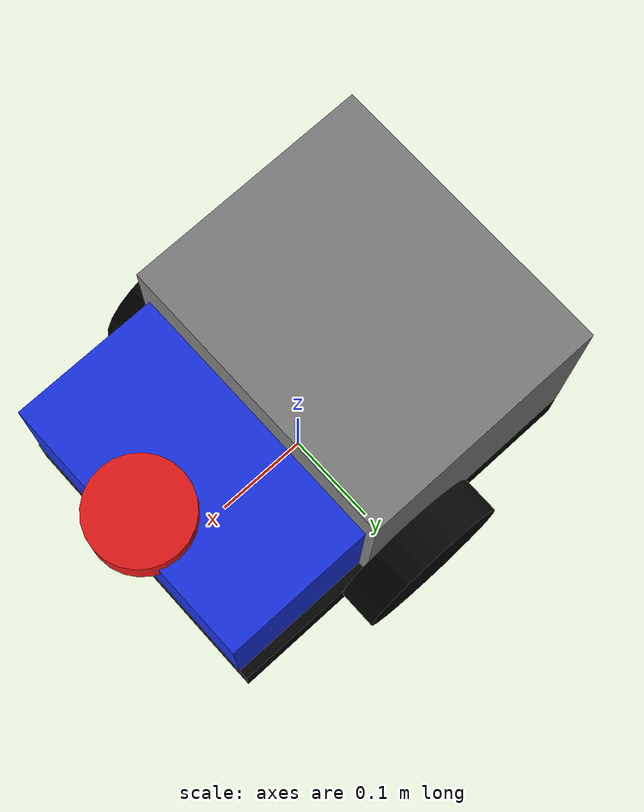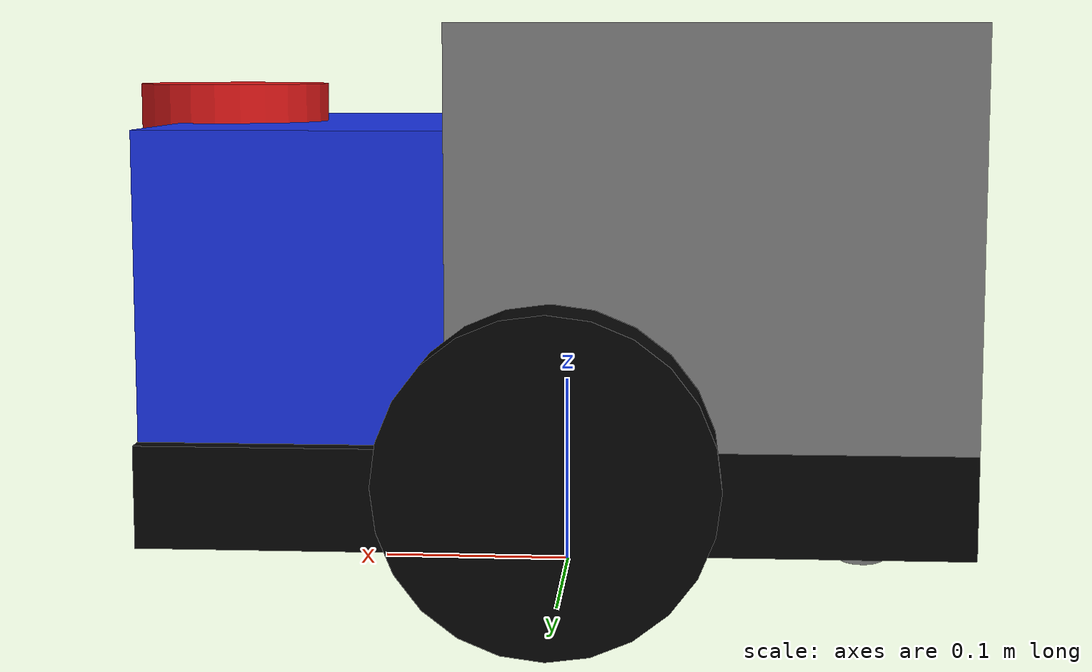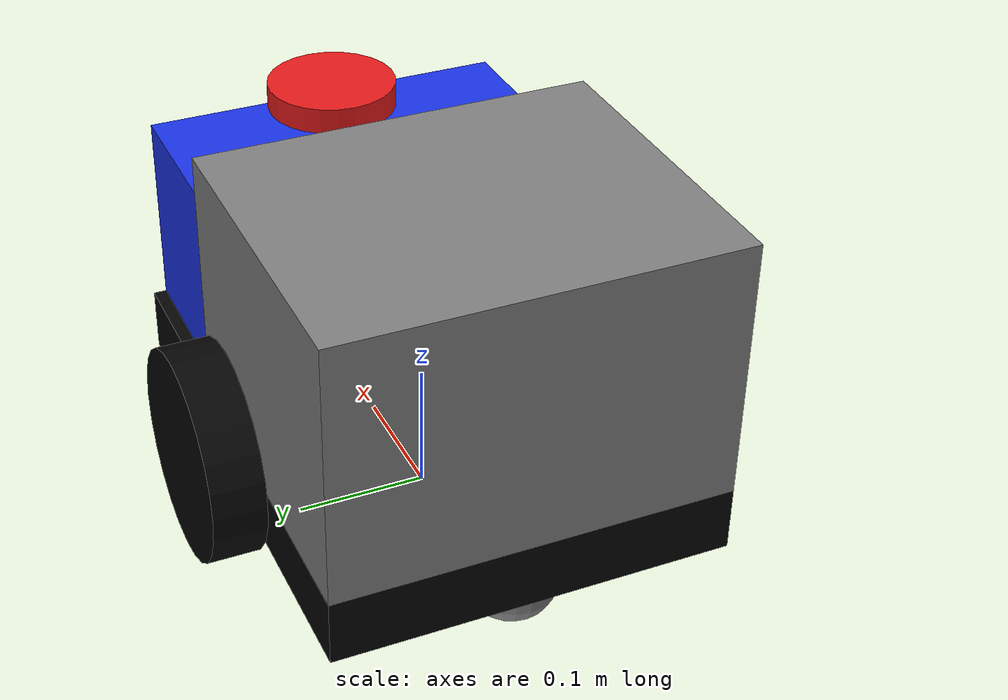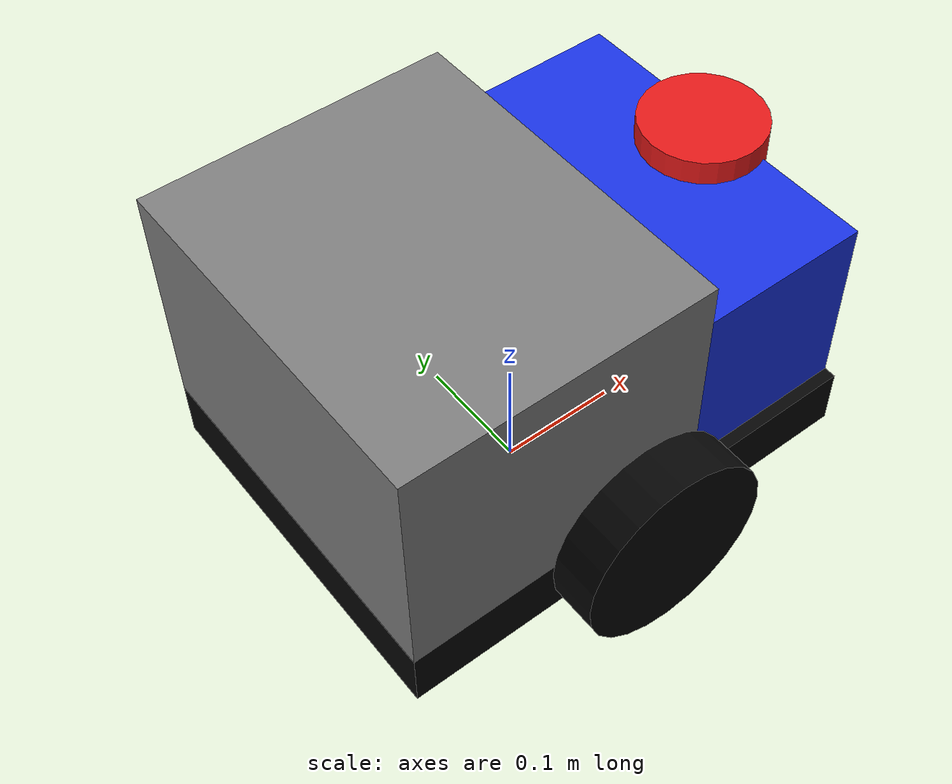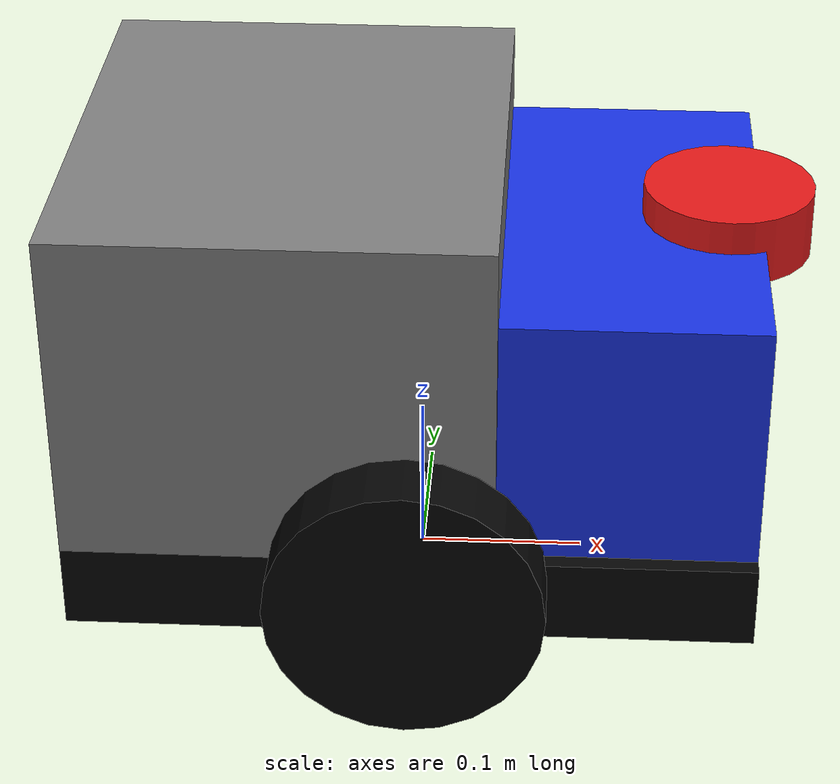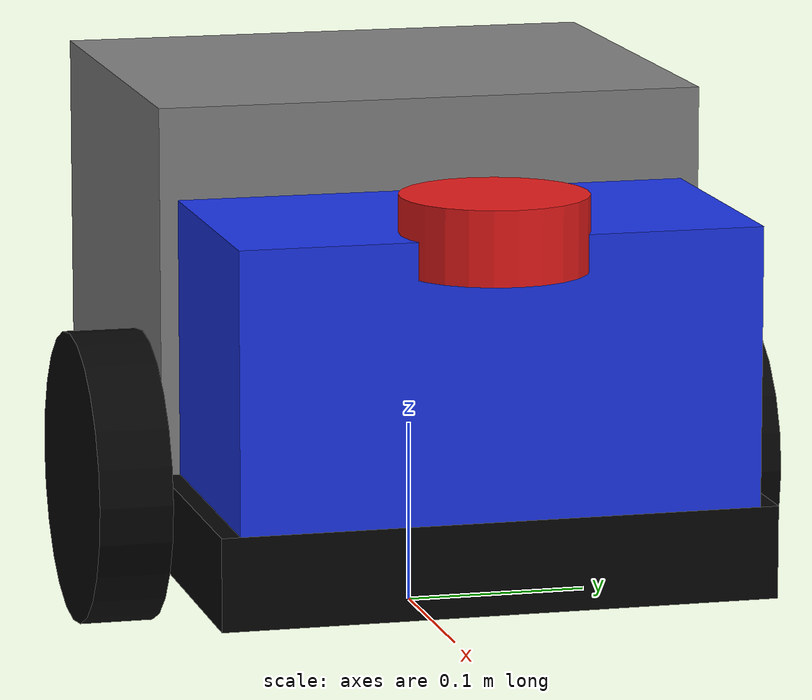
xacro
<?xml version="1.0"?>
<robot name="group34Bot" xmlns:xacro="http://www.ros.org/wiki/xacro">

  <!-- Include other files -->
  <xacro:include filename="materials.xacro" />
  <xacro:include filename="macros.xacro" />
  <xacro:include filename="group34Bot.gazebo" />

  <link name="base_footprint" />

  <joint name="base_footprint_joint" type="fixed">
    <parent link="base_footprint" />
    <child link="base_link" />
    <origin xyz="0 0 0.12" rpy="0 0 0" />
  </joint>

  <!-- UPGRADED BASE LINK: Visually a van, physically a box -->
  <link name="base_link">
    <xacro:custom_inertia m="2.0" ixx="0.03" iyy="0.03" izz="0.05" />

    <!-- VISUAL 1: The Lower Chassis (Flatbed base) -->
    <visual name="flatbed_visual">
      <origin xyz="0 0 -0.055" rpy="0 0 0" />
      <geometry><box size="0.40 0.30 0.05" /></geometry>
      <!-- Assuming 'dark' is defined in your materials.xacro -->
      <material name="dark" />
    </visual>

    <!-- VISUAL 2: The Cargo Box (Back of the van) -->
    <visual name="cargo_visual">
      <origin xyz="-0.075 0 0.07" rpy="0 0 0" />
      <geometry><box size="0.25 0.30 0.20" /></geometry>
      <!-- Assuming 'grey' is defined in your materials.xacro -->
      <material name="grey" />
    </visual>

    <!-- VISUAL 3: The Driver Cab (Front of the van) -->
    <visual name="cab_visual">
      <origin xyz="0.125 0 0.045" rpy="0 0 0" />
      <geometry><box size="0.15 0.28 0.15" /></geometry>
      <!-- Assuming 'blue' is defined in your materials.xacro -->
      <material name="blue" />
    </visual>

    <!-- ORIGINAL COLLISION: Untouched to protect Q-Learning physics -->
    <collision>
      <origin xyz="0 0 0" rpy="0 0 0" />
      <geometry><box size="0.40 0.30 0.16" /></geometry>
    </collision>
  </link>

  <!-- Left Wheel -->
  <link name="left_wheel">
    <xacro:custom_inertia m="0.25" ixx="0.001" iyy="0.001" izz="0.001" />
    <visual>
      <origin xyz="0 0 0" rpy="1.5708 0 0" />
      <geometry><cylinder radius="0.08" length="0.04" /></geometry>
      <material name="dark" />
    </visual>
    <collision>
      <origin xyz="0 0 0" rpy="1.5708 0 0" />
      <geometry><cylinder radius="0.08" length="0.04" /></geometry>
    </collision>
  </link>

  <!-- Right Wheel -->
  <link name="right_wheel">
    <xacro:custom_inertia m="0.25" ixx="0.001" iyy="0.001" izz="0.001" />
    <visual>
      <origin xyz="0 0 0" rpy="1.5708 0 0" />
      <geometry><cylinder radius="0.08" length="0.04" /></geometry>
      <material name="dark" />
    </visual>
    <collision>
      <origin xyz="0 0 0" rpy="1.5708 0 0" />
      <geometry><cylinder radius="0.08" length="0.04" /></geometry>
    </collision>
  </link>

  <!-- Left Wheel Joint -->
  <joint name="left_wheel_joint" type="continuous">
    <parent link="base_link" />
    <child link="left_wheel" />
    <origin xyz="0 0.17 -0.04" rpy="0 0 0" />
    <axis xyz="0 1 0" />
    <dynamics damping="0.15" friction="0.02" />
  </joint>

  <!-- Right Wheel Joint -->
  <joint name="right_wheel_joint" type="continuous">
    <parent link="base_link" />
    <child link="right_wheel" />
    <origin xyz="0 -0.17 -0.04" rpy="0 0 0" />
    <axis xyz="0 1 0" />
    <dynamics damping="0.15" friction="0.02" />
  </joint>

  <!-- Caster Wheel -->
  <link name="caster_wheel">
    <xacro:custom_inertia m="0.10" ixx="0.0002" iyy="0.0002" izz="0.0002" />
    <visual>
      <geometry><sphere radius="0.035" /></geometry>
      <material name="grey" />
    </visual>
    <collision>
      <geometry><sphere radius="0.035" /></geometry>
    </collision>
  </link>

  <!-- Caster Wheel Joint -->
  <joint name="caster_joint" type="fixed">
    <parent link="base_link" />
    <child link="caster_wheel" />
    <origin xyz="-0.16 0 -0.085" rpy="0 0 0" />
  </joint>

  <!-- Lidar Sensor -->
  <link name="laser_link">
    <xacro:custom_inertia m="0.10" ixx="0.0001" iyy="0.0001" izz="0.0001" />
    <visual>
      <origin xyz="0 0 0" rpy="0 0 0" />
      <geometry><cylinder radius="0.05" length="0.04" /></geometry>
      <material name="red" />
    </visual>
    <collision>
      <origin xyz="0 0 0" rpy="0 0 0" />
      <geometry><cylinder radius="0.05" length="0.04" /></geometry>
    </collision>
  </link>

  <!-- Lidar Joint (Sits exactly on top of the new cab) -->
  <joint name="laser_joint" type="fixed">
    <parent link="base_link" />
    <child link="laser_link" />
    <origin xyz="0.18 0 0.12" rpy="0 0 0" />
  </joint>

</robot>

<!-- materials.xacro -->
<robot xmlns:xacro="http://www.ros.org/wiki/xacro">
  <material name="blue">
    <color rgba="0.1 0.2 0.9 1.0" />
  </material>
  <material name="dark">
    <color rgba="0.02 0.02 0.02 1" />
  </material>
  <material name="grey">
    <color rgba="0.5 0.5 0.5 1" />
  </material>
  <material name="red">
    <color rgba="0.9 0.1 0.1 1" />
  </material>
</robot>

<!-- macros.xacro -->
<robot xmlns:xacro="http://www.ros.org/wiki/xacro">
  <!-- Macro to quickly generate inertial tags -->
  <xacro:macro name="custom_inertia" params="m ixx iyy izz">
    <inertial>
      <origin xyz="0 0 0" rpy="0 0 0" />
      <mass value="${m}" />
      <inertia ixx="${ixx}" ixy="0.0" ixz="0.0" iyy="${iyy}" iyz="0.0" izz="${izz}" />
    </inertial>
  </xacro:macro>
</robot>
